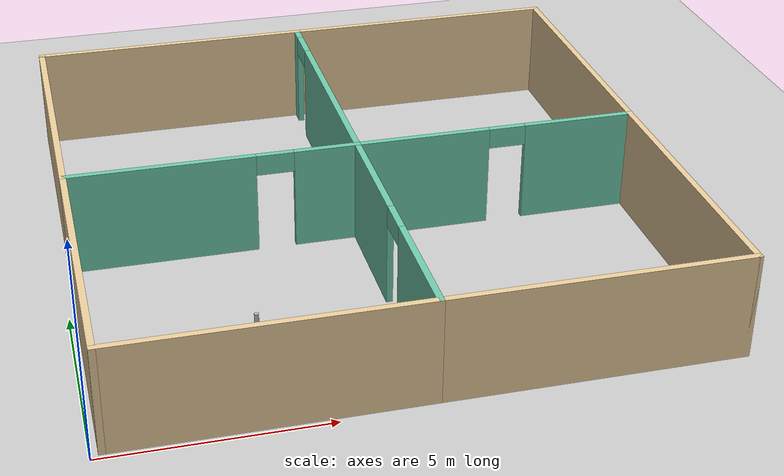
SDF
<sdf version="1.7">
 <world name="default">
  <light name="sun" type="directional">
   <pose>0 0 10 0 -0 0</pose>
   <diffuse>0.8 0.8 0.8 1</diffuse>
   <specular>0.2 0.2 0.2 1</specular>
   <attenuation>
    <range>1000</range>
    <constant>0.9</constant>
    <linear>0.01</linear>
    <quadratic>0.001</quadratic>
   </attenuation>
   <direction>-0.5 0.1 -0.9</direction>
   <spot><inner_angle>0</inner_angle><outer_angle>0</outer_angle><falloff>0</falloff></spot>
  </light>
  <model name="ground_plane">
   <static>1</static>
   <link name="link">
    <collision name="collision">
     <geometry><plane><normal>0 0 1</normal><size>100 100</size></plane></geometry>
     <surface>
      <contact><collide_bitmask>65535</collide_bitmask></contact>
      <friction><ode><mu>100</mu><mu2>50</mu2></ode></friction>
     </surface>
    </collision>
    <visual name="visual">
     <cast_shadows>0</cast_shadows>
     <geometry><plane><normal>0 0 1</normal><size>100 100</size></plane></geometry>
     <material>
      <script><uri>file://media/materials/scripts/gazebo.material</uri><name>Gazebo/Grey</name></script>
     </material>
    </visual>
   </link>
  </model>
  <gravity>0 0 -9.8</gravity>
  <magnetic_field>6e-06 2.3e-05 -4.2e-05</magnetic_field>
  <atmosphere type="adiabatic"/>
  <physics type="ode">
   <max_step_size>0.001</max_step_size>
   <real_time_factor>1</real_time_factor>
   <real_time_update_rate>1000</real_time_update_rate>
  </physics>
  <scene><ambient>0.4 0.4 0.4 1</ambient><background>0.7 0.7 0.7 1</background><shadows>1</shadows></scene>
  <audio><device>default</device></audio>
  <spherical_coordinates>
   <surface_model>EARTH_WGS84</surface_model>
   <latitude_deg>0</latitude_deg>
   <longitude_deg>0</longitude_deg>
   <elevation>0</elevation>
   <heading_deg>0</heading_deg>
  </spherical_coordinates>
  <model name="plane_4">
   <pose>7.08194 7.03941 0 0 -0 0</pose>
   <link name="Wall_1">
    <collision name="Wall_1_Collision">
     <geometry><box><size>7 0.15 2.5</size></box></geometry>
     <pose>0 0 1.25 0 -0 0</pose>
    </collision>
    <visual name="Wall_1_Visual">
     <pose>0 0 1.25 0 -0 0</pose>
     <geometry><box><size>7 0.15 2.5</size></box></geometry>
     <material>
      <script><uri>file://media/materials/scripts/gazebo.material</uri><name>Gazebo/Grey</name></script>
      <ambient>0.921569 0.807843 0.615686 1</ambient>
     </material>
     <meta><layer>0</layer></meta>
    </visual>
    <pose>-6.85 -3.425 0 0 -0 1.5708</pose>
   </link>
   <link name="Wall_17">
    <pose>3.425 0 0 0 -0 0</pose>
    <visual name="Wall_17_Visual_0">
     <pose>-1.83825 0 1.25 0 -0 0</pose>
     <geometry><box><size>3.3235 0.15 2.5</size></box></geometry>
     <material>
      <script><uri>file://media/materials/scripts/gazebo.material</uri><name>Gazebo/Grey</name></script>
      <ambient>0.435294 0.796078 0.67451 1</ambient>
     </material>
     <meta><layer>0</layer></meta>
    </visual>
    <collision name="Wall_17_Collision_0">
     <geometry><box><size>3.3235 0.15 2.5</size></box></geometry>
     <pose>-1.83825 0 1.25 0 -0 0</pose>
    </collision>
    <visual name="Wall_17_Visual_1">
     <pose>2.11175 0 1.25 0 -0 0</pose>
     <geometry><box><size>2.7765 0.15 2.5</size></box></geometry>
     <material>
      <script><uri>file://media/materials/scripts/gazebo.material</uri><name>Gazebo/Grey</name></script>
      <ambient>0.435294 0.796078 0.67451 1</ambient>
     </material>
     <meta><layer>0</layer></meta>
    </visual>
    <collision name="Wall_17_Collision_1">
     <geometry><box><size>2.7765 0.15 2.5</size></box></geometry>
     <pose>2.11175 0 1.25 0 -0 0</pose>
    </collision>
    <visual name="Wall_17_Visual_2">
     <pose>0.273504 0 2.25 0 -0 0</pose>
     <geometry><box><size>0.9 0.15 0.5</size></box></geometry>
     <material>
      <script><uri>file://media/materials/scripts/gazebo.material</uri><name>Gazebo/Grey</name></script>
      <ambient>0.435294 0.796078 0.67451 1</ambient>
     </material>
     <meta><layer>0</layer></meta>
    </visual>
    <collision name="Wall_17_Collision_2">
     <geometry><box><size>0.9 0.15 0.5</size></box></geometry>
     <pose>0.273504 0 2.25 0 -0 0</pose>
    </collision>
   </link>
   <link name="Wall_18">
    <collision name="Wall_18_Collision">
     <geometry><box><size>7 0.15 2.5</size></box></geometry>
     <pose>0 0 1.25 0 -0 0</pose>
    </collision>
    <visual name="Wall_18_Visual">
     <pose>0 0 1.25 0 -0 0</pose>
     <geometry><box><size>7 0.15 2.5</size></box></geometry>
     <material>
      <script><uri>file://media/materials/scripts/gazebo.material</uri><name>Gazebo/Grey</name></script>
      <ambient>0.921569 0.807843 0.615686 1</ambient>
     </material>
     <meta><layer>0</layer></meta>
    </visual>
    <pose>6.85 -3.425 0 0 -0 -1.5708</pose>
   </link>
   <link name="Wall_2">
    <pose>-3.425 0 0 0 -0 0</pose>
    <visual name="Wall_2_Visual_0">
     <pose>-1.24968 0 1.25 0 -0 0</pose>
     <geometry><box><size>4.50064 0.15 2.5</size></box></geometry>
     <material>
      <script><uri>file://media/materials/scripts/gazebo.material</uri><name>Gazebo/Grey</name></script>
      <ambient>0.435294 0.796078 0.67451 1</ambient>
     </material>
     <meta><layer>0</layer></meta>
    </visual>
    <collision name="Wall_2_Collision_0">
     <geometry><box><size>4.50064 0.15 2.5</size></box></geometry>
     <pose>-1.24968 0 1.25 0 -0 0</pose>
    </collision>
    <visual name="Wall_2_Visual_1">
     <pose>2.70032 0 1.25 0 -0 0</pose>
     <geometry><box><size>1.59936 0.15 2.5</size></box></geometry>
     <material>
      <script><uri>file://media/materials/scripts/gazebo.material</uri><name>Gazebo/Grey</name></script>
      <ambient>0.435294 0.796078 0.67451 1</ambient>
     </material>
     <meta><layer>0</layer></meta>
    </visual>
    <collision name="Wall_2_Collision_1">
     <geometry><box><size>1.59936 0.15 2.5</size></box></geometry>
     <pose>2.70032 0 1.25 0 -0 0</pose>
    </collision>
    <visual name="Wall_2_Visual_2">
     <pose>1.45064 0 2.25 0 -0 0</pose>
     <geometry><box><size>0.9 0.15 0.5</size></box></geometry>
     <material>
      <script><uri>file://media/materials/scripts/gazebo.material</uri><name>Gazebo/Grey</name></script>
      <ambient>0.435294 0.796078 0.67451 1</ambient>
     </material>
     <meta><layer>0</layer></meta>
    </visual>
    <collision name="Wall_2_Collision_2">
     <geometry><box><size>0.9 0.15 0.5</size></box></geometry>
     <pose>1.45064 0 2.25 0 -0 0</pose>
    </collision>
   </link>
   <link name="Wall_20">
    <collision name="Wall_20_Collision">
     <geometry><box><size>7 0.15 2.5</size></box></geometry>
     <pose>0 0 1.25 0 -0 0</pose>
    </collision>
    <visual name="Wall_20_Visual">
     <pose>0 0 1.25 0 -0 0</pose>
     <geometry><box><size>7 0.15 2.5</size></box></geometry>
     <material>
      <script><uri>file://media/materials/scripts/gazebo.material</uri><name>Gazebo/Grey</name></script>
      <ambient>0.921569 0.807843 0.615686 1</ambient>
     </material>
     <meta><layer>0</layer></meta>
    </visual>
    <pose>-6.85 3.425 0 0 -0 1.5708</pose>
   </link>
   <link name="Wall_21">
    <collision name="Wall_21_Collision">
     <geometry><box><size>7 0.15 2.5</size></box></geometry>
     <pose>0 0 1.25 0 -0 0</pose>
    </collision>
    <visual name="Wall_21_Visual">
     <pose>0 0 1.25 0 -0 0</pose>
     <geometry><box><size>7 0.15 2.5</size></box></geometry>
     <material>
      <script><uri>file://media/materials/scripts/gazebo.material</uri><name>Gazebo/Grey</name></script>
      <ambient>0.921569 0.807843 0.615686 1</ambient>
     </material>
     <meta><layer>0</layer></meta>
    </visual>
    <pose>-3.425 6.85 0 0 -0 0</pose>
   </link>
   <link name="Wall_22">
    <pose>0 3.425 0 0 -0 -1.5708</pose>
    <visual name="Wall_22_Visual_0">
     <pose>-3.24452 0 1.25 0 -0 0</pose>
     <geometry><box><size>0.510951 0.15 2.5</size></box></geometry>
     <material>
      <script><uri>file://media/materials/scripts/gazebo.material</uri><name>Gazebo/Grey</name></script>
      <ambient>0.435294 0.796078 0.67451 1</ambient>
     </material>
     <meta><layer>0</layer></meta>
    </visual>
    <collision name="Wall_22_Collision_0">
     <geometry><box><size>0.510951 0.15 2.5</size></box></geometry>
     <pose>-3.24452 0 1.25 0 -0 0</pose>
    </collision>
    <visual name="Wall_22_Visual_1">
     <pose>0.705476 0 1.25 0 -0 0</pose>
     <geometry><box><size>5.58905 0.15 2.5</size></box></geometry>
     <material>
      <script><uri>file://media/materials/scripts/gazebo.material</uri><name>Gazebo/Grey</name></script>
      <ambient>0.435294 0.796078 0.67451 1</ambient>
     </material>
     <meta><layer>0</layer></meta>
    </visual>
    <collision name="Wall_22_Collision_1">
     <geometry><box><size>5.58905 0.15 2.5</size></box></geometry>
     <pose>0.705476 0 1.25 0 -0 0</pose>
    </collision>
    <visual name="Wall_22_Visual_2">
     <pose>-2.53905 0 2.25 0 -0 0</pose>
     <geometry><box><size>0.9 0.15 0.5</size></box></geometry>
     <material>
      <script><uri>file://media/materials/scripts/gazebo.material</uri><name>Gazebo/Grey</name></script>
      <ambient>0.435294 0.796078 0.67451 1</ambient>
     </material>
     <meta><layer>0</layer></meta>
    </visual>
    <collision name="Wall_22_Collision_2">
     <geometry><box><size>0.9 0.15 0.5</size></box></geometry>
     <pose>-2.53905 0 2.25 0 -0 0</pose>
    </collision>
   </link>
   <link name="Wall_24">
    <collision name="Wall_24_Collision">
     <geometry><box><size>7 0.15 2.5</size></box></geometry>
     <pose>0 0 1.25 0 -0 0</pose>
    </collision>
    <visual name="Wall_24_Visual">
     <pose>0 0 1.25 0 -0 0</pose>
     <geometry><box><size>7 0.15 2.5</size></box></geometry>
     <material>
      <script><uri>file://media/materials/scripts/gazebo.material</uri><name>Gazebo/Grey</name></script>
      <ambient>0.921569 0.807843 0.615686 1</ambient>
     </material>
     <meta><layer>0</layer></meta>
    </visual>
    <pose>3.425 6.85 0 0 -0 0</pose>
   </link>
   <link name="Wall_25">
    <collision name="Wall_25_Collision">
     <geometry><box><size>7 0.15 2.5</size></box></geometry>
     <pose>0 0 1.25 0 -0 0</pose>
    </collision>
    <visual name="Wall_25_Visual">
     <pose>0 0 1.25 0 -0 0</pose>
     <geometry><box><size>7 0.15 2.5</size></box></geometry>
     <material>
      <script><uri>file://media/materials/scripts/gazebo.material</uri><name>Gazebo/Grey</name></script>
      <ambient>0.921569 0.807843 0.615686 1</ambient>
     </material>
     <meta><layer>0</layer></meta>
    </visual>
    <pose>6.85 3.425 0 0 -0 -1.5708</pose>
   </link>
   <link name="Wall_3">
    <pose>0 -3.425 0 0 -0 -1.5708</pose>
    <visual name="Wall_3_Visual_0">
     <pose>-1.94721 0 1.25 0 -0 0</pose>
     <geometry><box><size>3.10559 0.15 2.5</size></box></geometry>
     <material>
      <script><uri>file://media/materials/scripts/gazebo.material</uri><name>Gazebo/Grey</name></script>
      <ambient>0.435294 0.796078 0.67451 1</ambient>
     </material>
     <meta><layer>0</layer></meta>
    </visual>
    <collision name="Wall_3_Collision_0">
     <geometry><box><size>3.10559 0.15 2.5</size></box></geometry>
     <pose>-1.94721 0 1.25 0 -0 0</pose>
    </collision>
    <visual name="Wall_3_Visual_1">
     <pose>2.00279 0 1.25 0 -0 0</pose>
     <geometry><box><size>2.99442 0.15 2.5</size></box></geometry>
     <material>
      <script><uri>file://media/materials/scripts/gazebo.material</uri><name>Gazebo/Grey</name></script>
      <ambient>0.435294 0.796078 0.67451 1</ambient>
     </material>
     <meta><layer>0</layer></meta>
    </visual>
    <collision name="Wall_3_Collision_1">
     <geometry><box><size>2.99442 0.15 2.5</size></box></geometry>
     <pose>2.00279 0 1.25 0 -0 0</pose>
    </collision>
    <visual name="Wall_3_Visual_2">
     <pose>0.055585 0 2.25 0 -0 0</pose>
     <geometry><box><size>0.9 0.15 0.5</size></box></geometry>
     <material>
      <script><uri>file://media/materials/scripts/gazebo.material</uri><name>Gazebo/Grey</name></script>
      <ambient>0.435294 0.796078 0.67451 1</ambient>
     </material>
     <meta><layer>0</layer></meta>
    </visual>
    <collision name="Wall_3_Collision_2">
     <geometry><box><size>0.9 0.15 0.5</size></box></geometry>
     <pose>0.055585 0 2.25 0 -0 0</pose>
    </collision>
   </link>
   <link name="Wall_4">
    <collision name="Wall_4_Collision">
     <geometry><box><size>7 0.15 2.5</size></box></geometry>
     <pose>0 0 1.25 0 -0 0</pose>
    </collision>
    <visual name="Wall_4_Visual">
     <pose>0 0 1.25 0 -0 0</pose>
     <geometry><box><size>7 0.15 2.5</size></box></geometry>
     <material>
      <script><uri>file://media/materials/scripts/gazebo.material</uri><name>Gazebo/Grey</name></script>
      <ambient>0.921569 0.807843 0.615686 1</ambient>
     </material>
     <meta><layer>0</layer></meta>
    </visual>
    <pose>-3.425 -6.85 0 0 -0 3.14159</pose>
   </link>
   <link name="Wall_6">
    <collision name="Wall_6_Collision">
     <geometry><box><size>7 0.15 2.5</size></box></geometry>
     <pose>0 0 1.25 0 -0 0</pose>
    </collision>
    <visual name="Wall_6_Visual">
     <pose>0 0 1.25 0 -0 0</pose>
     <geometry><box><size>7 0.15 2.5</size></box></geometry>
     <material>
      <script><uri>file://media/materials/scripts/gazebo.material</uri><name>Gazebo/Grey</name></script>
      <ambient>0.921569 0.807843 0.615686 1</ambient>
     </material>
     <meta><layer>0</layer></meta>
    </visual>
    <pose>3.425 -6.85 0 0 -0 0</pose>
   </link>
   <static>1</static>
  </model>
  <model name="beer">
   <link name="link">
    <pose>0 0 0.115 0 -0 0</pose>
    <inertial>
     <mass>0.39</mass>
     <inertia><ixx>0.00058</ixx><ixy>0</ixy><ixz>0</ixz><iyy>0.00058</iyy><iyz>0</iyz><izz>0.00019</izz></inertia>
    </inertial>
    <collision name="collision">
     <geometry><cylinder><radius>0.055</radius><length>0.23</length></cylinder></geometry>
    </collision>
    <visual name="visual">
     <geometry><cylinder><radius>0.055</radius><length>0.23</length></cylinder></geometry>
     <material>
      <script>
       <uri>model://beer/materials/scripts</uri>
       <uri>model://beer/materials/textures</uri>
       <name>Beer/Diffuse</name>
      </script>
     </material>
    </visual>
   </link>
   <pose>4.01701 3.92985 -7e-06 0 0 -5e-06</pose>
  </model>
 </world>
</sdf>
